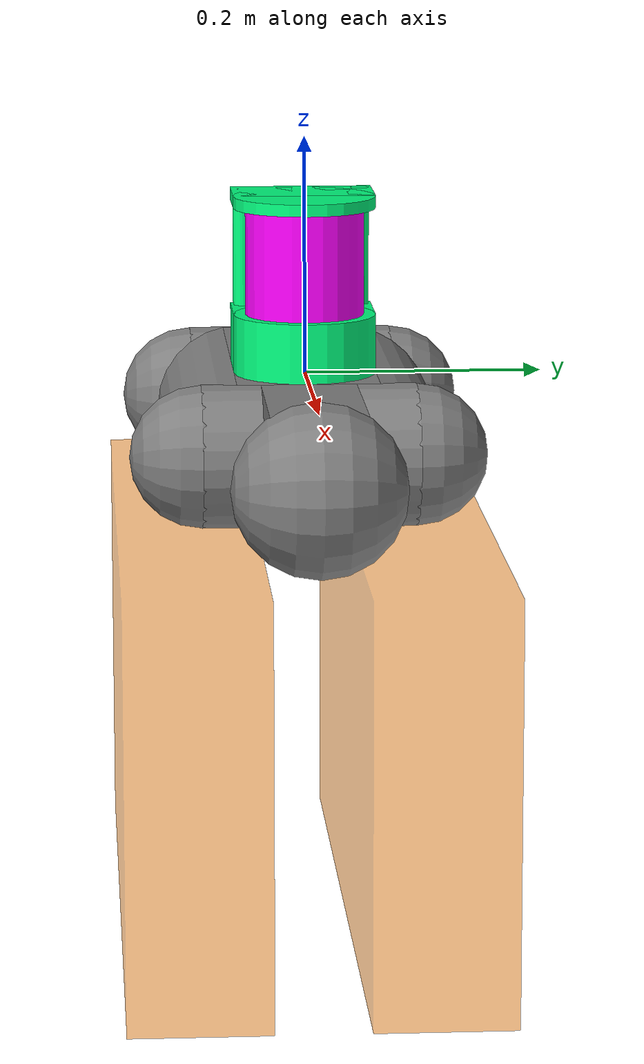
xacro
<?xml version="1.0"?>
<robot xmlns:xacro="http://www.ros.org/wiki/xacro" name="helios16p">
  <!--
  Lidar URDF/XACRO
  Descrizione: Modello base del Lidar Helios 16P della Robosense
  Autore: Gabriele Barletta
  Data: 10/12/25
  Licenza: GNU GPL
  -->
  <xacro:property name="global_z_offset" value="0"/>

  <xacro:property name="goshift_x" value="0.09"/>

  <!-- Colori -->
  <xacro:property name="waterblue" value="0 1 0.5 1"/>
  <xacro:property name="purple" value="1 0 1 1"/>
  <xacro:property name="gray" value="0.5 0.5 0.5 1"/>
  <xacro:property name="orange" value="1 0.5 0 0.5"/>

  <!-- Dimensioni ricorrenti -->
  <xacro:property name="base_box_size" value="0.065 0.12 0.05"/>
  <xacro:property name="top_box_size" value="0.065 0.12 0.01"/>
  <xacro:property name="base_round_radius" value="0.06"/>
  <xacro:property name="base_round_length" value="0.05"/>
  <xacro:property name="top_round_radius" value="0.06"/>
  <xacro:property name="top_round_length" value="0.01"/>
  <xacro:property name="pillar_radius" value="0.008"/>
  <xacro:property name="pillar_length" value="0.1"/>
  <xacro:property name="lidar_radius" value="0.05"/>
  <xacro:property name="lidar_length" value="0.1"/>

  <!-- Posizioni ricorrenti -->
  <xacro:property name="base_round_z" value="0.025"/>
  <xacro:property name="top_z" value="0.145"/>
  <xacro:property name="pillar_z" value="0.05"/>
  <xacro:property name="lidar_z" value="0.05"/>

  <!-- Link principale - è la parte "squadrata" della base del lidar -->
  <link name="base_link">
    <visual>
      <geometry>
        <box size="${base_box_size}"/>
      </geometry>
      <material name="waterblue">
        <color rgba="${waterblue}"/>
      </material>
      <origin xyz="-0.0325 0 ${0.025+global_z_offset}" rpy="0 0 0"/>
    </visual>
  </link>

<!-- parte curva inferiore montata sul link principale-->
  <link name="base_round_part">
    <visual>
      <geometry>
        <cylinder radius="${base_round_radius}" length="${base_round_length}"/>
      </geometry>
      <material name="waterblue">
        <color rgba="${waterblue}"/>
      </material>
      <origin xyz="0 0 0" rpy="0 0 0"/>
    </visual>
  </link>
  <joint name="base_round_to_base" type="fixed">
    <parent link="base_link"/>
    <child link="base_round_part"/>
    <origin xyz="0 0 ${base_round_z+global_z_offset}" rpy="0 0 0"/>
  </joint>

<!-- parte non curva superiore montata sul link principale-->
  <link name="top_link">
    <visual>
      <geometry>
        <box size="${top_box_size}"/>
      </geometry>
      <material name="waterblue">
        <color rgba="${waterblue}"/>
      </material>
      <origin xyz="-0.0325 0 0" rpy="0 0 0"/>
    </visual>
  </link>
  <joint name="top_to_base" type="fixed">
    <parent link="base_link"/>
    <child link="top_link"/>
    <origin xyz="0 0 ${top_z+global_z_offset}" rpy="0 0 0"/>
  </joint>

<!-- parte curva superiore montata sul link principale-->
<link name="top_round_part">
    <visual>
      <geometry>
        <cylinder radius="${top_round_radius}" length="${top_round_length}"/>
      </geometry>
      <material name="waterblue">
        <color rgba="${waterblue}"/>
      </material>
      <origin xyz="0 0 0" rpy="0 0 0"/>
    </visual>
  </link>
  <joint name="top_round_to_base" type="fixed">
    <parent link="base_link"/>
    <child link="top_round_part"/>
    <origin xyz="0 0 ${top_z+global_z_offset}" rpy="0 0 0"/>
  </joint>

  <!-- Pilastro montato sul lato sinistro -->
  <link name="sx_pillar">
    <visual>
      <geometry>
        <cylinder radius="${pillar_radius}" length="${pillar_length}"/>
      </geometry>
      <material name="waterblue">
        <color rgba="${waterblue}"/>
      </material>
      <origin xyz="0 0 ${pillar_z}" rpy="0 0 0"/>
    </visual>
  </link>
  <joint name="sx_pillar_to_base" type="fixed">
    <parent link="base_link"/>
    <child link="sx_pillar"/>
    <origin xyz="-0.055 0.05 ${pillar_z+global_z_offset}" rpy="0 0 0"/>
  </joint>

  <!-- Pilastro montato sul lato destro -->
  <link name="dx_pillar">
    <visual>
      <geometry>
        <cylinder radius="${pillar_radius}" length="${pillar_length}"/>
      </geometry>
      <material name="waterblue">
        <color rgba="${waterblue}"/>
      </material>
      <origin xyz="0 0 ${pillar_z}" rpy="0 0 0"/>
    </visual>
  </link>
  <joint name="dx_pillar_to_base" type="fixed">
    <parent link="base_link"/>
    <child link="dx_pillar"/>
    <origin xyz="-0.055 -0.05 ${pillar_z+global_z_offset}" rpy="0 0 0"/>
  </joint>

  <!-- Lidar montato sulla base -->
 <link name="lidar_link">
    <visual>
      <geometry>
        <cylinder radius="${lidar_radius}" length="${lidar_length}"/>
      </geometry>
      <material name="purple">
        <color rgba="${purple}"/>
      </material>
      <origin xyz="0 0 0.04" rpy="0 0 0"/>
    </visual>
  </link>
  <joint name="base_to_lidar" type="fixed">
    <parent link="base_link"/>
    <child link="lidar_link"/>
    <origin xyz="0 0 ${lidar_z+global_z_offset}" rpy="0 0 0"/>
  </joint>

  <link name="gobody">
    <visual>
      <geometry>
        <box size="0.30 0.12 0.12"/>
      </geometry>
      <material name="gray">
        <color rgba="${gray}"/>
      </material>
      <origin xyz="0 0 0" rpy="0 0 0"/>
    </visual>
  </link>
  <joint name="gobody_to_base" type="fixed">
    <parent link="base_link"/>
    <child link="gobody"/>
    <origin xyz="${0-goshift_x} 0 ${-0.06+global_z_offset}" rpy="0 0 0"/>
  </joint>

  <link name="gobodysx">
    <visual>
      <geometry>
        <cylinder radius="0.060" length="0.30"/>
      </geometry>
      <material name="gray">
        <color rgba="${gray}"/>
      </material>
      <origin xyz="0 0 0" rpy="0 0 0"/>
    </visual>
  </link>
  <joint name="gobodysx_to_base" type="fixed">
    <parent link="base_link"/>
    <child link="gobodysx"/>
    <origin xyz="${0-goshift_x} 0.06 ${-0.060+global_z_offset}" rpy="0 1.5708 0"/>
  </joint>

  <link name="gobodydx">
    <visual>
      <geometry>
        <cylinder radius="0.06" length="0.30"/>
      </geometry>
      <material name="gray">
        <color rgba="${gray}"/>
      </material>
      <origin xyz="0 0 0" rpy="0 0 0"/>
    </visual>
  </link>
  <joint name="gobodydx_to_base" type="fixed">
    <parent link="base_link"/>
    <child link="gobodydx"/>
    <origin xyz="${0-goshift_x} -0.06 ${-0.060+global_z_offset}" rpy="0 1.5708 0"/>
  </joint>

  <link name="goneck">
    <visual>
      <geometry>
        <box size="0.15 0.08 0.12"/>
      </geometry>
      <material name="gray">
        <color rgba="${gray}"/>
      </material>
      <origin xyz="0 0 0" rpy="0 0 0"/>
    </visual>
  </link>
  <joint name="goneck_to_base" type="fixed">
    <parent link="base_link"/>
    <child link="goneck"/>
    <origin xyz="${0.225-goshift_x} 0 ${-0.06+global_z_offset}" rpy="0 0 0"/>
  </joint>

  <link name="gohead">
    <visual>
      <geometry>
        <sphere radius="0.072"/>
      </geometry>
      <material name="gray">
        <color rgba="${gray}"/>
      </material>
      <origin xyz="0 0 0" rpy="0 0 0"/>
    </visual>
  </link>
  <joint name="gohead_to_base" type="fixed">
    <parent link="base_link"/>
    <child link="gohead"/>
    <origin xyz="${0.30-goshift_x} 0 ${-0.060+global_z_offset}" rpy="1.5708 0 0"/>
  </joint>

  <link name="goassback">
    <visual>
      <geometry>
        <cylinder radius="0.06" length="0.18"/>
      </geometry>
      <material name="gray">
        <color rgba="${gray}"/>
      </material>
      <origin xyz="0 0 0" rpy="0 0 0"/>
    </visual>
  </link>
  <joint name="goassback_to_base" type="fixed">
    <parent link="base_link"/>
    <child link="goassback"/>
    <origin xyz="${-0.15-goshift_x} 0 ${-0.060+global_z_offset}" rpy="1.5708 0 0"/>
  </joint>

  <link name="goassdx">
    <visual>
      <geometry>
        <sphere radius="0.06"/>
      </geometry>
      <material name="gray">
        <color rgba="${gray}"/>
      </material>
      <origin xyz="0 0 0" rpy="0 0 0"/>
    </visual>
  </link>
  <joint name="goassdx_to_base" type="fixed">
    <parent link="base_link"/>
    <child link="goassdx"/>
    <origin xyz="${-0.15-goshift_x} -0.09 ${-0.060+global_z_offset}" rpy="1.5708 0 0"/>
  </joint>

  <link name="goassx">
    <visual>
      <geometry>
        <sphere radius="0.06"/>
      </geometry>
      <material name="gray">
        <color rgba="${gray}"/>
      </material>
      <origin xyz="0 0 0" rpy="0 0 0"/>
    </visual>
  </link>
  <joint name="goasssx_to_base" type="fixed">
    <parent link="base_link"/>
    <child link="goassx"/>
    <origin xyz="${-0.15-goshift_x} 0.09 ${-0.060+global_z_offset}" rpy="1.5708 0 0"/>
  </joint>

<link name="goneckdx">
    <visual>
      <geometry>
        <sphere radius="0.06"/>
      </geometry>
      <material name="gray">
        <color rgba="${gray}"/>
      </material>
      <origin xyz="0 0 0" rpy="0 0 0"/>
    </visual>
  </link>
  <joint name="goneckdx_to_base" type="fixed">
    <parent link="base_link"/>
    <child link="goneckdx"/>
    <origin xyz="${0.15-goshift_x} -0.09 ${-0.060+global_z_offset}" rpy="1.5708 0 0"/>
  </joint>

  <link name="gonecksx">
    <visual>
      <geometry>
        <sphere radius="0.06"/>
      </geometry>
      <material name="gray">
        <color rgba="${gray}"/>
      </material>
      <origin xyz="0 0 0" rpy="0 0 0"/>
    </visual>
  </link>
  <joint name="gonecksx_to_base" type="fixed">
    <parent link="base_link"/>
    <child link="gonecksx"/>
    <origin xyz="${0.15-goshift_x} 0.09 ${-0.060+global_z_offset}" rpy="1.5708 0 0"/>
  </joint>

  <link name="goaneckshoulders">
    <visual>
      <geometry>
        <cylinder radius="0.06" length="0.18"/>
      </geometry>
      <material name="gray">
        <color rgba="${gray}"/>
      </material>
      <origin xyz="0 0 0" rpy="0 0 0"/>
    </visual>
  </link>
  <joint name="goaneckshoulders_to_base" type="fixed">
    <parent link="base_link"/>
    <child link="goaneckshoulders"/>
    <origin xyz="${0.15-goshift_x} 0 ${-0.060+global_z_offset}" rpy="1.5708 0 0"/>
  </joint>

  <link name="legsx">
    <visual>
      <geometry>
        <box size="0.70 0.12 0.36"/>
      </geometry>
      <material name="orange">
        <color rgba="${orange}"/>
      </material>
      <origin xyz="0 0 0" rpy="0 0 0"/>
    </visual>
  </link>
  <joint name="legsx_to_base" type="fixed">
    <parent link="base_link"/>
    <child link="legsx"/>
    <origin xyz="${0-goshift_x} 0.1 ${-0.32+global_z_offset}" rpy="0 0 0"/>
  </joint>

  <link name="legdx">
    <visual>
      <geometry>
        <box size="0.70 0.12 0.36"/>
      </geometry>
      <material name="orange">
        <color rgba="${orange}"/>
      </material>
      <origin xyz="0 0 0" rpy="0 0 0"/>
    </visual>
  </link>
  <joint name="legdx_to_base" type="fixed">
    <parent link="base_link"/>
    <child link="legdx"/>
    <origin xyz="${0-goshift_x} -0.1 ${-0.32+global_z_offset}" rpy="0 0 0"/>
  </joint>

</robot>
